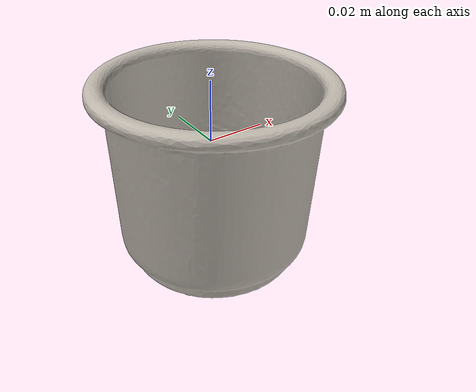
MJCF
<mujoco model="bread">
  <asset>
    <mesh file="nontextured.stl" name="obj_mesh" scale="0.8 0.8 0.8"/>
    <texture file="../../../../../textures/bread.png" type="2d" name="tex-bread" />
    <material name="bread" reflectance="0.7" texrepeat="15 15" texture="tex-bread" texuniform="true"/>
  </asset>
  <worldbody>
    <body>
      <body name="collision">
        <geom pos="-0.0034115000000000013 -0.014176000000000001 -0.0369195" mesh="obj_mesh" type="mesh" solimp="0.998 0.998 0.001" solref="0.001 1" density="50" friction="0.95 0.3 0.1"  material="bread" group="1" condim="4"/>
      </body>
      <body name="visual">
        <geom pos="-0.0034115000000000013 -0.014176000000000001 -0.0369195" mesh="obj_mesh" type="mesh" material="bread"  conaffinity="0" contype="0"  group="0" mass="0.0001"/>
        <geom pos="-0.0034115000000000013 -0.014176000000000001 -0.0369195" mesh="obj_mesh" type="mesh" material="bread"  conaffinity="0" contype="0"  group="1" mass="0.0001"/>
      </body>
      <site rgba="0 0 0 0" size="0.005" pos="0 0 -0.0375315" name="bottom_site"/>
      <site rgba="0 0 0 0" size="0.005" pos="0 0 0.0375315" name="top_site"/>
      <site rgba="0 0 0 0" size="0.005" pos="0.045747499999999997 0.045808 0.0375315" name="horizontal_radius_site"/>
    </body>
  </worldbody>
</mujoco>
